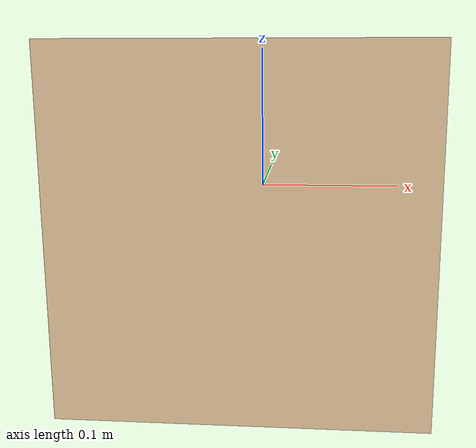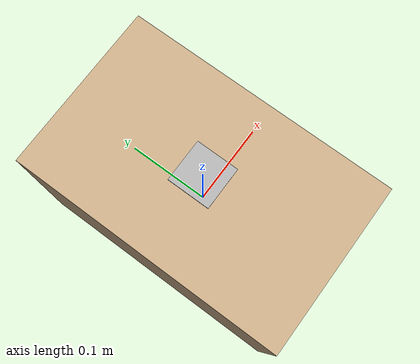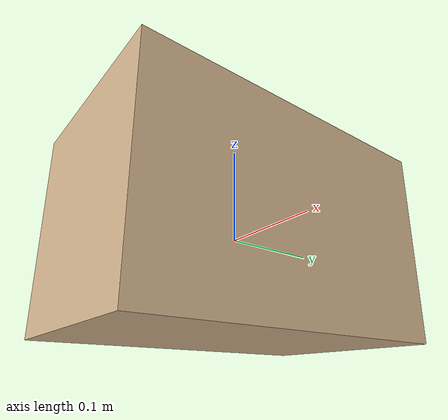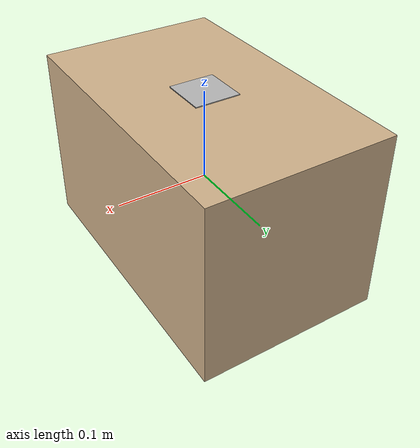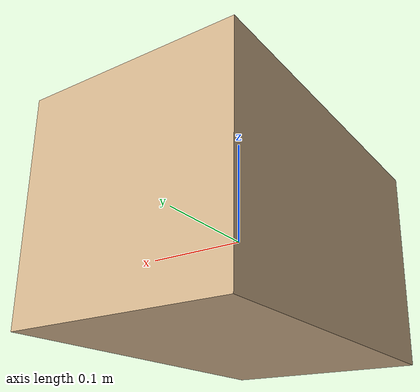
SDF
<?xml version="1.0"?>
<sdf version="1.6">
  <model name="aruco_box_26">
    <!-- dynamic: 양팔이 y축 양쪽에서 표면 안쪽 5mm를 스퀴즈(grasp_offset, main.cpp)한 상태로
         PHASE_GRASP_TO_PLACE 구간에서 어드미턴스 제어(F/T 센서 피드백)를 유지하면
         마찰(mu=2.5)로 실제 접촉 파지가 이루어진다. 더 이상 pose를 강제로 갱신하지 않는다. -->
    <static>false</static>
    <link name="link">
      <inertial>
        <mass>0.10</mass>
        <!-- 0.20 x 0.32 x 0.20m solid box. -->
        <inertia>
          <ixx>0.001187</ixx>
          <ixy>0</ixy>
          <ixz>0</ixz>
          <iyy>0.000667</iyy>
          <iyz>0</iyz>
          <izz>0.001187</izz>
        </inertia>
      </inertial>

      <collision name="collision">
        <geometry>
          <box>
            <size>0.2 0.32 0.2</size>
          </box>
        </geometry>
        <surface>
          <friction>
            <ode>
              <mu>2.5</mu>
              <mu2>2.5</mu2>
              <kp>100000.0</kp>
              <kd>30.0</kd>
            </ode>
          </friction>
        </surface>
      </collision>

      <visual name="visual_box">
        <geometry>
          <box>
            <size>0.2 0.32 0.2</size>
          </box>
        </geometry>
        <material>
          <ambient>0.82 0.70 0.55 1</ambient>
          <diffuse>0.82 0.70 0.55 1</diffuse>
        </material>
      </visual>

      <visual name="visual_marker_26">
        <pose>0 0 0.1005 0 0 0</pose>
        <geometry>
          <box>
            <size>0.05 0.05 0.001</size>
          </box>
        </geometry>
        <material>
          <script>
            <uri>model://aruco_marker_26/materials/scripts</uri>
            <uri>model://aruco_marker_26/materials/textures</uri>
            <name>Aruco/Marker26</name>
          </script>
        </material>
      </visual>
    </link>
  </model>
</sdf>
